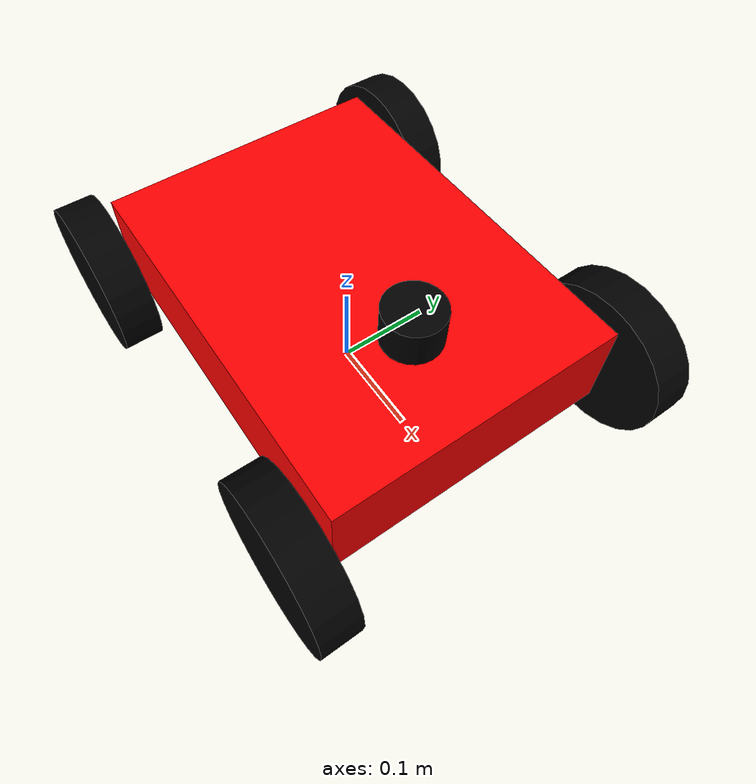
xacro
<?xml version="1.0"?>
<robot xmlns:xacro="http://www.ros.org/wiki/xacro" name="my_agv">

    <xacro:property name="chassis_length" value="0.4"/>
    <xacro:property name="chassis_width" value="0.3"/>
    <xacro:property name="chassis_height" value="0.1"/>
    <xacro:property name="wheel_radius" value="0.08"/>
    <xacro:property name="wheel_width" value="0.04"/>
    <xacro:property name="wheel_offset_y" value="0.18"/>
    <xacro:property name="wheel_offset_x" value="0.18"/>
    <xacro:property name="lidar_radius" value="0.03"/>
    <xacro:property name="lidar_height" value="0.04"/>

    <material name="red"><color rgba="1 0 0 1"/></material>
    <material name="black"><color rgba="0 0 0 1"/></material>

    <xacro:macro name="box_inertia" params="m w h d">
        <inertial>
            <mass value="${m}"/>
            <inertia ixx="${(m/12) * (h*h + d*d)}" ixy="0.0" ixz="0.0" iyy="${(m/12) * (w*w + d*d)}" iyz="0.0" izz="${(m/12) * (w*w + h*h)}"/>
        </inertial>
    </xacro:macro>

    <xacro:macro name="cylinder_inertia" params="m r h">
        <inertial>
            <mass value="${m}"/>
            <inertia ixx="${(m/12) * (3*r*r + h*h)}" ixy="0" ixz="0" iyy="${(m/12) * (3*r*r + h*h)}" iyz="0" izz="${(m/2) * (r*r)}"/>
        </inertial>
    </xacro:macro>

    <link name="base_footprint"/>

    <link name="base_link">
        <visual>
            <geometry><box size="${chassis_length} ${chassis_width} ${chassis_height}"/></geometry>
            <material name="red"/>
        </visual>
        <collision>
            <geometry><box size="${chassis_length} ${chassis_width} ${chassis_height}"/></geometry>
        </collision>
        <xacro:box_inertia m="1.0" w="${chassis_width}" d="${chassis_length}" h="${chassis_height}"/>
    </link>

    <joint name="base_joint" type="fixed">
        <parent link="base_footprint"/>
        <child link="base_link"/>
        <origin xyz="0 0 ${chassis_height}" rpy="0 0 0"/>
    </joint>

    <gazebo reference="base_link">
        <material><ambient>1 0 0 1</ambient><diffuse>1 0 0 1</diffuse></material>
    </gazebo>

    <xacro:macro name="wheel" params="name x y friction">
        <link name="${name}_wheel">
            <visual>
                <geometry><cylinder radius="${wheel_radius}" length="${wheel_width}"/></geometry>
                <material name="black"/>
            </visual>
            <collision>
                <geometry><cylinder radius="${wheel_radius}" length="${wheel_width}"/></geometry>
            </collision>
            <xacro:cylinder_inertia m="2.0" r="${wheel_radius}" h="${wheel_width}"/>
        </link>

        <joint name="${name}_wheel_joint" type="continuous">
            <parent link="base_link"/>
            <child link="${name}_wheel"/>
            <origin xyz="${x} ${y} -0.02" rpy="-1.5708 0 0"/>
            <axis xyz="0 0 1"/>
        </joint>

        <gazebo reference="${name}_wheel">
            <material><ambient>0.1 0.1 0.1 1</ambient><diffuse>0.1 0.1 0.1 1</diffuse></material>
            <mu1>${friction}</mu1>
            <mu2>${friction}</mu2>
        </gazebo>
    </xacro:macro>

    <xacro:wheel name="front_right" x="${wheel_offset_x}" y="-${wheel_offset_y}" friction="0.0"/>
    <xacro:wheel name="front_left" x="${wheel_offset_x}" y="${wheel_offset_y}" friction="0.0"/>
    <xacro:wheel name="rear_right" x="-${wheel_offset_x}" y="-${wheel_offset_y}" friction="1.0"/>
    <xacro:wheel name="rear_left" x="-${wheel_offset_x}" y="${wheel_offset_y}" friction="1.0"/>

    <link name="laser_frame">
        <visual>
            <geometry><cylinder radius="${lidar_radius}" length="${lidar_height}"/></geometry>
            <material name="black"/>
        </visual>
        <xacro:cylinder_inertia m="0.1" r="${lidar_radius}" h="${lidar_height}"/>
    </link>

    <joint name="laser_joint" type="fixed">
        <parent link="base_link"/>
        <child link="laser_frame"/>
        <origin xyz="0.1 0 ${chassis_height/2 + lidar_height/2}" rpy="0 0 0"/>
    </joint>

    <gazebo reference="laser_joint">
        <preserveFixedJoint>true</preserveFixedJoint>
    </gazebo>

    <gazebo reference="laser_frame">
        <material><ambient>0 0 0 1</ambient><diffuse>0 0 0 1</diffuse></material>
        <sensor name="lidar" type="gpu_lidar">
            <pose>0 0 0 0 0 0</pose>
            <always_on>true</always_on>
            <visualize>false</visualize>
            <topic>scan</topic>
            <update_rate>10</update_rate>

            <gz_frame_id>laser_frame</gz_frame_id>

            <ray>
                <scan>
                    <horizontal>
                        <samples>360</samples>
                        <resolution>1</resolution>
                        <min_angle>-3.14</min_angle>
                        <max_angle>3.14</max_angle>
                    </horizontal>
                </scan>
                <range>
                    <min>0.2</min>
                    <max>12.0</max>
                    <resolution>0.01</resolution>
                </range>
            </ray>
        </sensor>
    </gazebo>

    <gazebo>
        <plugin filename="gz-sim-diff-drive-system" name="gz::sim::systems::DiffDrive">
            <left_joint>rear_left_wheel_joint</left_joint>
            <right_joint>rear_right_wheel_joint</right_joint>
            <wheel_separation>0.36</wheel_separation>
            <wheel_radius>${wheel_radius}</wheel_radius>

            <max_linear_acceleration>5</max_linear_acceleration>
            <max_angular_acceleration>10</max_angular_acceleration>

            <topic>cmd_vel</topic>
            <odom_topic>odom</odom_topic>
            <tf_topic>tf</tf_topic>
            <frame_id>odom</frame_id>
            <child_frame_id>base_footprint</child_frame_id>
        </plugin>

        <plugin filename="gz-sim-joint-state-publisher-system" name="gz::sim::systems::JointStatePublisher">
            <topic>joint_states</topic>
            <update_rate>50</update_rate>
        </plugin>
    </gazebo>

</robot>
